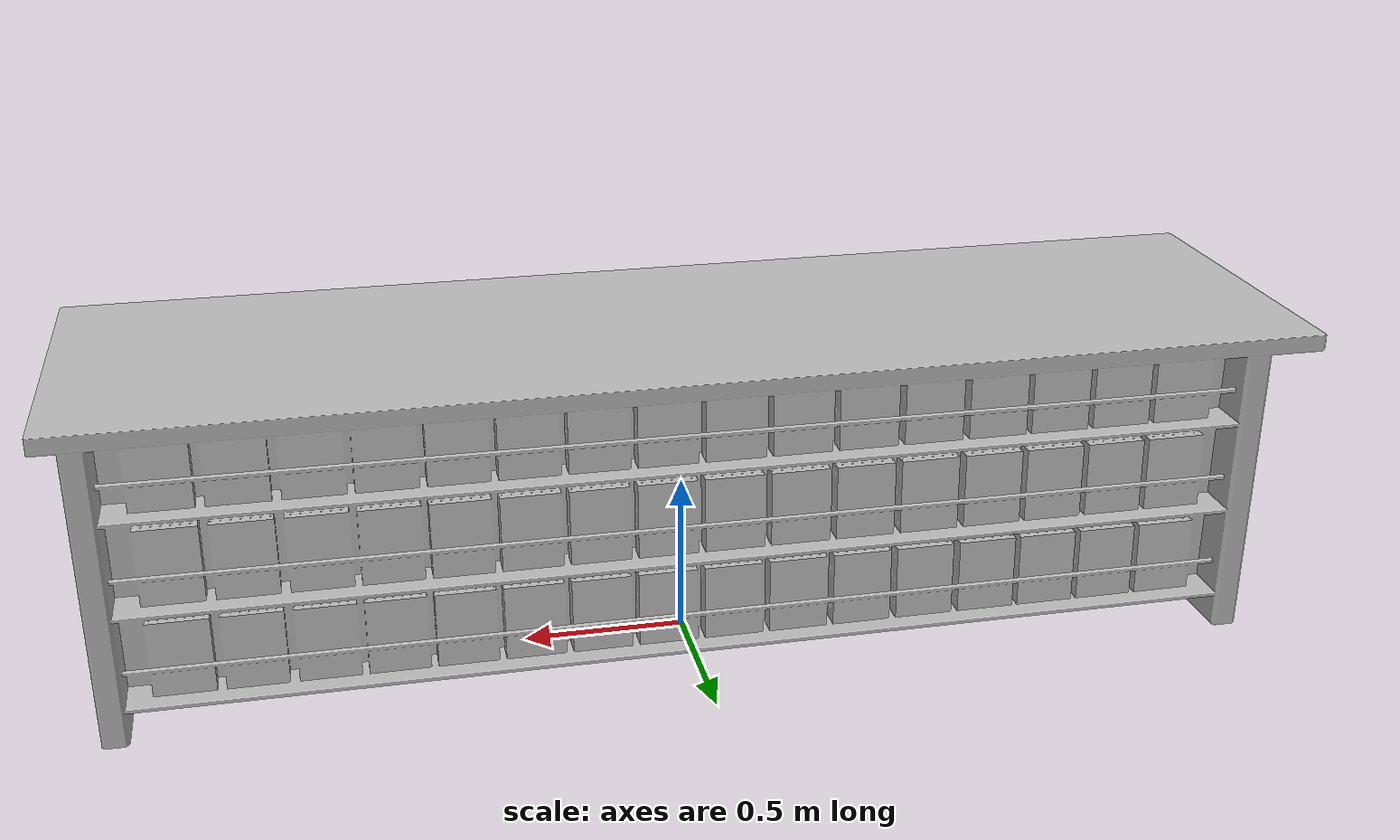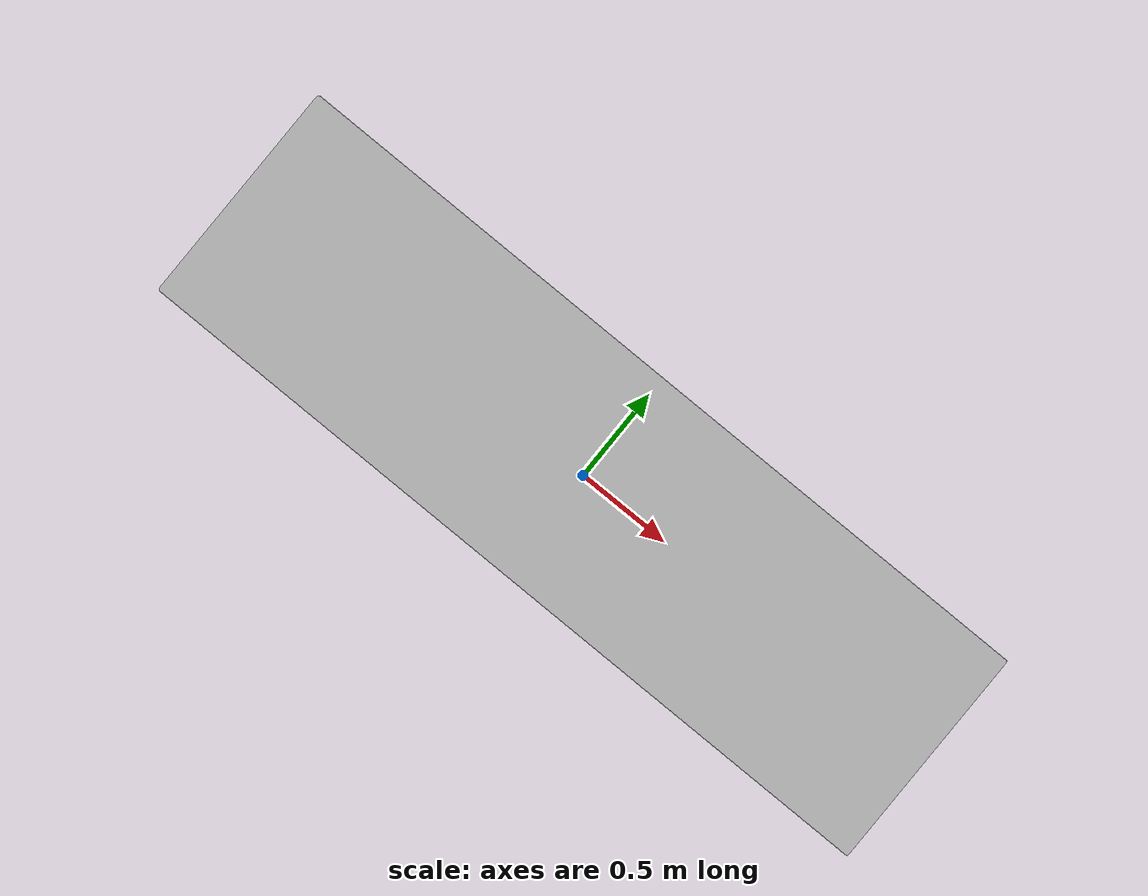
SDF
<?xml version="1.0" ?>
<sdf version="1.6">
  <model name="aws_robomaker_retail_DeskA_01">
    <link name="link">
      <inertial>
        <mass>20</mass>
        <inertia>
          <ixx>3.49717266</ixx>
          <ixy>0</ixy>
          <ixz>0</ixz>
          <iyy>23.5598501</iyy>
          <iyz>0</iyz>
          <izz>23.570161273</izz>
        </inertia>
      </inertial>
      <collision name="collision">
        <geometry>
          <mesh>
            <uri>model://aws_robomaker_retail_DeskA_01/meshes/aws_DeskA_01_collision.DAE</uri>
            <scale>1 1 1</scale>
          </mesh>
        </geometry>
      </collision>
      <visual name="visual">
	    <geometry>
          <mesh>
            <uri>model://aws_robomaker_retail_DeskA_01/meshes/aws_DeskA_01_visual.DAE</uri>
          </mesh>
        </geometry>
        <meta>
          <layer>1</layer>
        </meta>
      </visual>
    </link>
	<static>1</static>
  </model>
</sdf>
